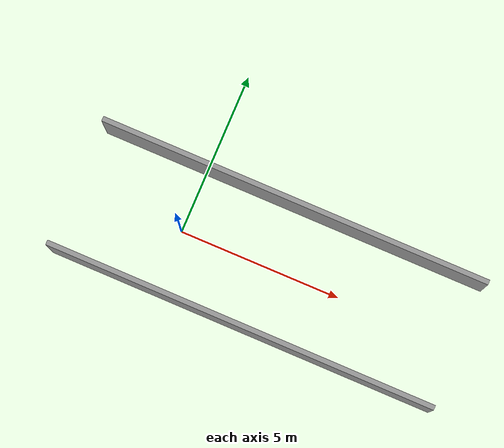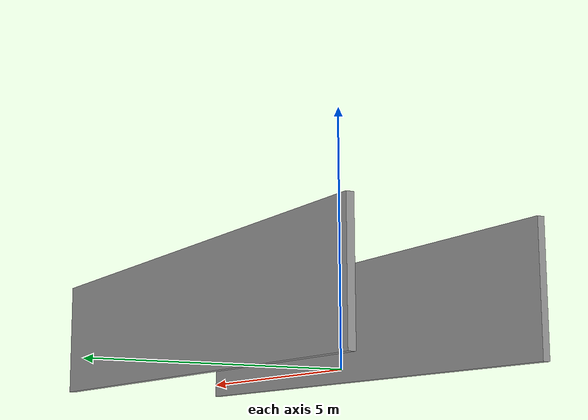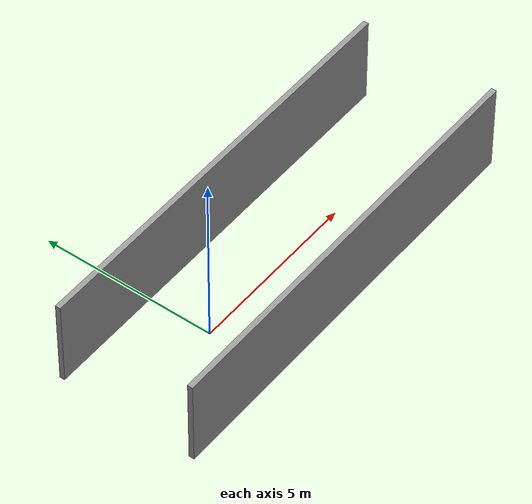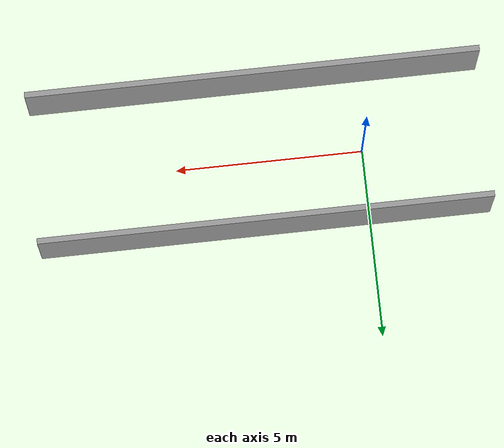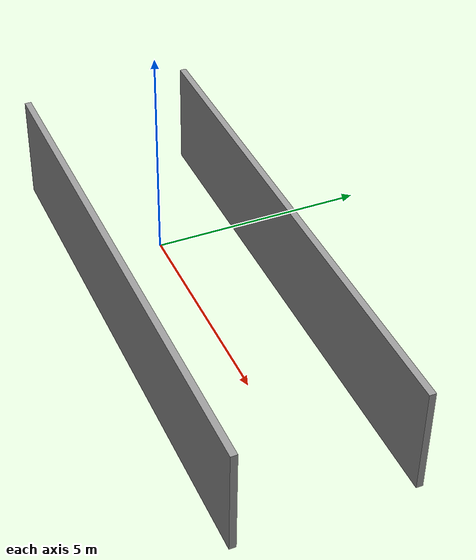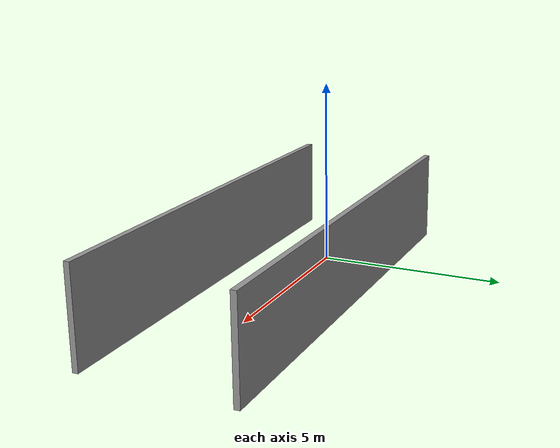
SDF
<?xml version='1.0'?>
<sdf version='1.7'>
  <model name='liuskaseinat'>
    <pose>2.76998 -0.044568 0 0 -0 0</pose>
    <link name='Wall_2'>
      <collision name='Wall_2_Collision'>
        <geometry>
          <box>
            <size>12 0.15 2.5</size>
          </box>
        </geometry>
        <pose>0 0 1.25 0 -0 0</pose>
      </collision>
      <visual name='Wall_2_Visual'>
        <pose>0 0 1.25 0 -0 0</pose>
        <geometry>
          <box>
            <size>12 0.15 2.5</size>
          </box>
        </geometry>
        <material>
          <script>
            <uri>file://media/materials/scripts/gazebo.material</uri>
            <name>Gazebo/Grey</name>
          </script>
          <ambient>1 1 1 1</ambient>
        </material>
        <meta>
          <layer>0</layer>
        </meta>
      </visual>
      <pose>0.023544 1.9463 0 0 -0 3.14159</pose>
    </link>
    <link name='Wall_7'>
      <collision name='Wall_7_Collision'>
        <geometry>
          <box>
            <size>12 0.15 2.5</size>
          </box>
        </geometry>
        <pose>0 0 1.25 0 -0 0</pose>
      </collision>
      <visual name='Wall_7_Visual'>
        <pose>0 0 1.25 0 -0 0</pose>
        <geometry>
          <box>
            <size>12 0.15 2.5</size>
          </box>
        </geometry>
        <material>
          <script>
            <uri>file://media/materials/scripts/gazebo.material</uri>
            <name>Gazebo/Grey</name>
          </script>
          <ambient>1 1 1 1</ambient>
        </material>
        <meta>
          <layer>0</layer>
        </meta>
      </visual>
      <pose>-0.023544 -1.9463 0 0 -0 0</pose>
    </link>
    <static>1</static>
  </model>
</sdf>
